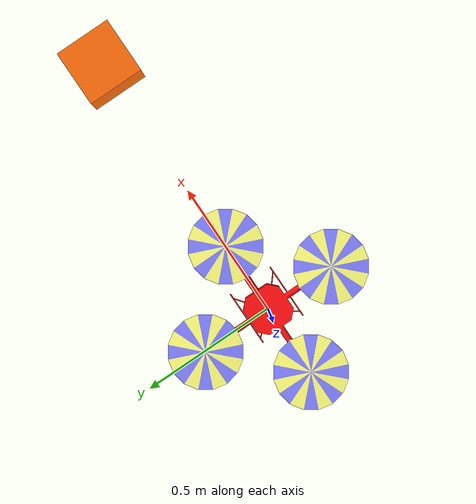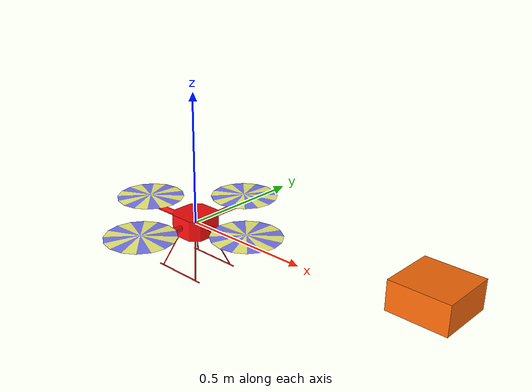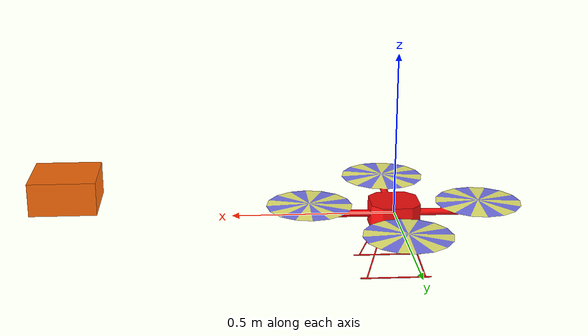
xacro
<?xml version="1.0"?>

<robot name="quadrotor" xmlns:xacro="http://www.ros.org/wiki/xacro">

    <xacro:property name="M_PI" value="3.1415926535897931" />

    <!-- Included URDF Files -->
    <xacro:include filename="$(find hector_quadrotor_description)/urdf/quadrotor_base.urdf.xacro" />

    <!-- Instantiate quadrotor_base_macro once (has no parameters atm) -->
    <xacro:quadrotor_base_macro />

    <!-- add box -->
    <joint name="$base_box_joint" type="floating">
        <origin rpy="0 0 0" xyz="1 0 0.1"/>
        <parent link="base_link"/>
        <child link="box_link"/>
    </joint>

    <link name="box_link">

        <visual>
            <origin xyz="0 0 0" rpy="0 0 0" />
            <geometry>
                <box size=".2 .2 .1" />
            </geometry>
            <material name="Orange">
                <color rgba="${255/255} ${108/255} ${10/255} 1.0"/>
            </material>
        </visual>

        <collision>
            <origin xyz="0 0 0" rpy="0 0 0" />
            <geometry>
                <box size=".2 .2 .1" />
            </geometry>
        </collision>

        <inertial>
            <mass value="0.1" />
            <origin xyz="0 0 0" rpy="0 0 0" />
            <inertia ixx="0.0004167" ixy="0" ixz="0" iyy="0.0004167" iyz="0" izz="0.0006667" />
        </inertial>

    </link>

</robot>

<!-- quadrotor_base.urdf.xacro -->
<robot xmlns:xacro="http://www.ros.org/wiki/xacro">

  <xacro:property name="pi" value="3.1415926535897931" />

  <!-- Main quadrotor link -->
  <xacro:macro name="quadrotor_base_macro">
    <link name="base_link">
      <inertial>
        <mass value="1.477" />
        <origin xyz="0 0 0" />
        <inertia ixx="0.01152" ixy="0.0" ixz="0.0" iyy="0.01152" iyz="0.0" izz="0.0218" />
      </inertial>

      <visual>
        <origin xyz="0 0 0" rpy="0 0 0" />
        <geometry>
          <mesh filename="package://hector_quadrotor_description/meshes/quadrotor/quadrotor_base.dae"/>
        </geometry>
      </visual>

      <collision>
        <origin xyz="0 0 0" rpy="0 0 0" />
        <geometry>
          <mesh filename="package://hector_quadrotor_description/meshes/quadrotor/quadrotor_base.stl"/>
        </geometry>
      </collision>
    </link>

    <!-- Sonar height sensor -->

  </xacro:macro>
</robot>
